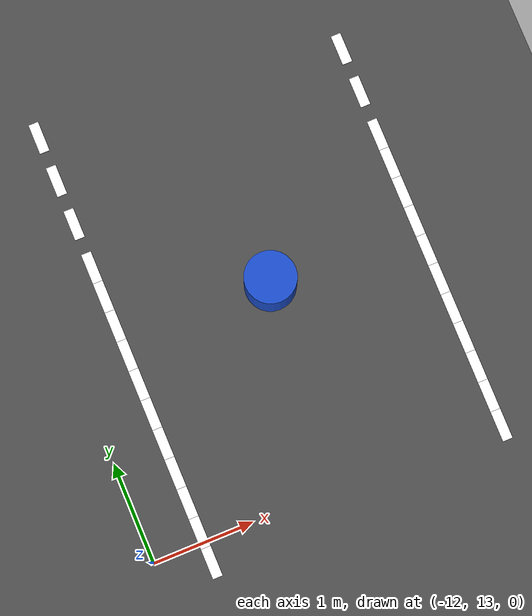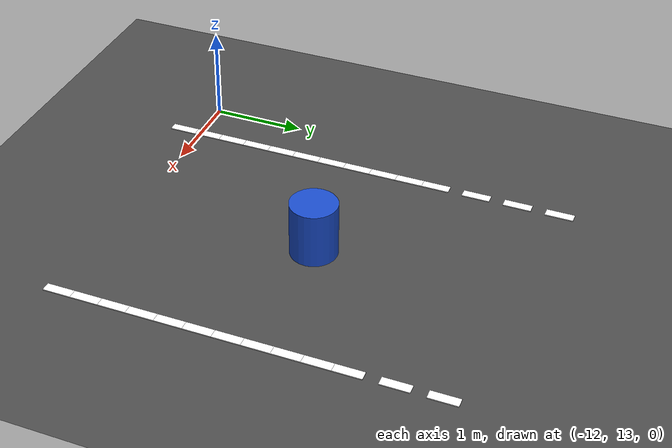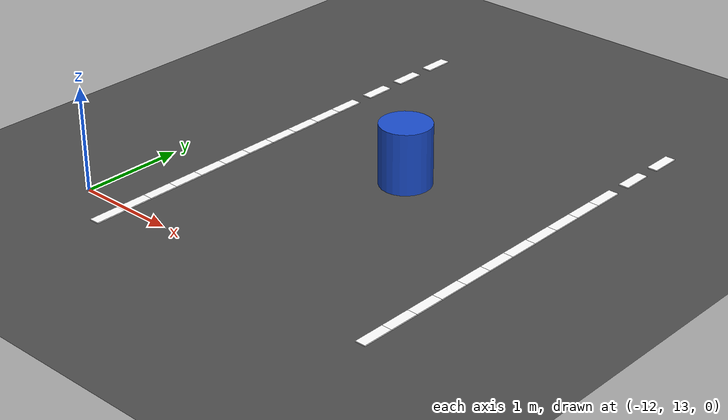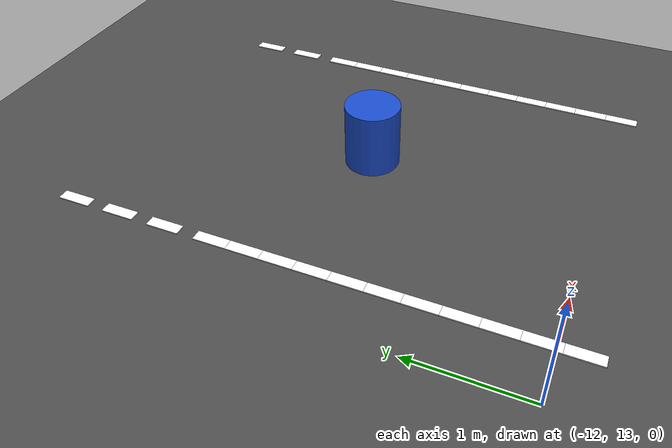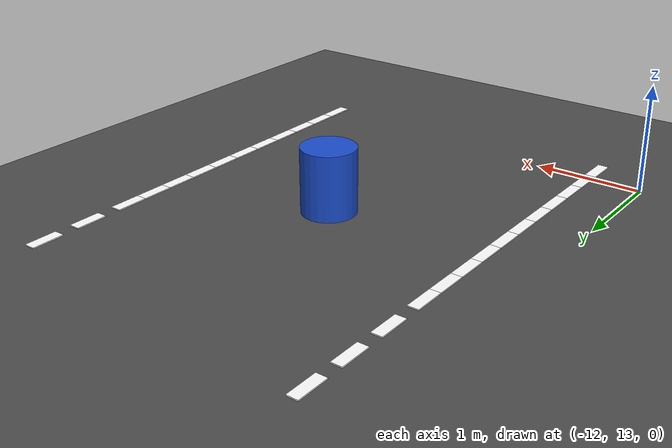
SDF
<sdf version="1.8">
 <world name="igvc_autonav">
  <model name="ground_plane">
   <static>true</static>
   <link name="link">
    <collision name="collision">
     <geometry><plane><normal>0 0 1</normal><size>60 60</size></plane></geometry>
     <surface><friction><ode><mu>0.8</mu><mu2>0.8</mu2></ode></friction></surface>
    </collision>
    <visual name="visual">
     <geometry><plane><normal>0 0 1</normal><size>60 60</size></plane></geometry>
     <material>
      <ambient>0.25 0.25 0.25 1</ambient>
      <diffuse>0.3 0.3 0.3 1</diffuse>
      <specular>0.1 0.1 0.1 1</specular>
     </material>
    </visual>
   </link>
  </model>
  <model name="lane_inner_138">
   <static>true</static>
   <pose>-8.5000 16.8500 0.01 0 0 -1.5708</pose>
   <link name="link">
    <visual name="visual">
     <geometry><box><size>0.3 0.1 0.01</size></box></geometry>
     <material><ambient>1 1 1 1</ambient><diffuse>1 1 1 1</diffuse><emissive>1 1 1 1</emissive></material>
    </visual>
   </link>
  </model>
  <model name="lane_inner_139">
   <static>true</static>
   <pose>-8.5000 16.4000 0.01 0 0 -1.5708</pose>
   <link name="link">
    <visual name="visual">
     <geometry><box><size>0.3 0.1 0.01</size></box></geometry>
     <material><ambient>1 1 1 1</ambient><diffuse>1 1 1 1</diffuse><emissive>1 1 1 1</emissive></material>
    </visual>
   </link>
  </model>
  <model name="lane_inner_140">
   <static>true</static>
   <pose>-8.5000 15.9500 0.01 0 0 -1.5708</pose>
   <link name="link">
    <visual name="visual">
     <geometry><box><size>0.3 0.1 0.01</size></box></geometry>
     <material><ambient>1 1 1 1</ambient><diffuse>1 1 1 1</diffuse><emissive>1 1 1 1</emissive></material>
    </visual>
   </link>
  </model>
  <model name="lane_inner_141">
   <static>true</static>
   <pose>-8.5000 15.6500 0.01 0 0 -1.5708</pose>
   <link name="link">
    <visual name="visual">
     <geometry><box><size>0.3 0.1 0.01</size></box></geometry>
     <material><ambient>1 1 1 1</ambient><diffuse>1 1 1 1</diffuse><emissive>1 1 1 1</emissive></material>
    </visual>
   </link>
  </model>
  <model name="lane_inner_142">
   <static>true</static>
   <pose>-8.5000 15.3500 0.01 0 0 -1.5708</pose>
   <link name="link">
    <visual name="visual">
     <geometry><box><size>0.3 0.1 0.01</size></box></geometry>
     <material><ambient>1 1 1 1</ambient><diffuse>1 1 1 1</diffuse><emissive>1 1 1 1</emissive></material>
    </visual>
   </link>
  </model>
  <model name="lane_inner_143">
   <static>true</static>
   <pose>-8.5000 15.0500 0.01 0 0 -1.5708</pose>
   <link name="link">
    <visual name="visual">
     <geometry><box><size>0.3 0.1 0.01</size></box></geometry>
     <material><ambient>1 1 1 1</ambient><diffuse>1 1 1 1</diffuse><emissive>1 1 1 1</emissive></material>
    </visual>
   </link>
  </model>
  <model name="lane_inner_144">
   <static>true</static>
   <pose>-8.5000 14.7500 0.01 0 0 -1.5708</pose>
   <link name="link">
    <visual name="visual">
     <geometry><box><size>0.3 0.1 0.01</size></box></geometry>
     <material><ambient>1 1 1 1</ambient><diffuse>1 1 1 1</diffuse><emissive>1 1 1 1</emissive></material>
    </visual>
   </link>
  </model>
  <model name="lane_inner_145">
   <static>true</static>
   <pose>-8.5000 14.4500 0.01 0 0 -1.5708</pose>
   <link name="link">
    <visual name="visual">
     <geometry><box><size>0.3 0.1 0.01</size></box></geometry>
     <material><ambient>1 1 1 1</ambient><diffuse>1 1 1 1</diffuse><emissive>1 1 1 1</emissive></material>
    </visual>
   </link>
  </model>
  <model name="lane_inner_146">
   <static>true</static>
   <pose>-8.5000 14.1500 0.01 0 0 -1.5708</pose>
   <link name="link">
    <visual name="visual">
     <geometry><box><size>0.3 0.1 0.01</size></box></geometry>
     <material><ambient>1 1 1 1</ambient><diffuse>1 1 1 1</diffuse><emissive>1 1 1 1</emissive></material>
    </visual>
   </link>
  </model>
  <model name="lane_inner_147">
   <static>true</static>
   <pose>-8.5000 13.8500 0.01 0 0 -1.5708</pose>
   <link name="link">
    <visual name="visual">
     <geometry><box><size>0.3 0.1 0.01</size></box></geometry>
     <material><ambient>1 1 1 1</ambient><diffuse>1 1 1 1</diffuse><emissive>1 1 1 1</emissive></material>
    </visual>
   </link>
  </model>
  <model name="lane_inner_148">
   <static>true</static>
   <pose>-8.5000 13.5500 0.01 0 0 -1.5708</pose>
   <link name="link">
    <visual name="visual">
     <geometry><box><size>0.3 0.1 0.01</size></box></geometry>
     <material><ambient>1 1 1 1</ambient><diffuse>1 1 1 1</diffuse><emissive>1 1 1 1</emissive></material>
    </visual>
   </link>
  </model>
  <model name="lane_inner_149">
   <static>true</static>
   <pose>-8.5000 13.2500 0.01 0 0 -1.5708</pose>
   <link name="link">
    <visual name="visual">
     <geometry><box><size>0.3 0.1 0.01</size></box></geometry>
     <material><ambient>1 1 1 1</ambient><diffuse>1 1 1 1</diffuse><emissive>1 1 1 1</emissive></material>
    </visual>
   </link>
  </model>
  <model name="lane_inner_150">
   <static>true</static>
   <pose>-8.5000 12.9500 0.01 0 0 -1.5708</pose>
   <link name="link">
    <visual name="visual">
     <geometry><box><size>0.3 0.1 0.01</size></box></geometry>
     <material><ambient>1 1 1 1</ambient><diffuse>1 1 1 1</diffuse><emissive>1 1 1 1</emissive></material>
    </visual>
   </link>
  </model>
  <model name="lane_outer_170">
   <static>true</static>
   <pose>-11.5000 17.1500 0.01 0 0 -1.5708</pose>
   <link name="link">
    <visual name="visual">
     <geometry><box><size>0.3 0.1 0.01</size></box></geometry>
     <material><ambient>1 1 1 1</ambient><diffuse>1 1 1 1</diffuse><emissive>1 1 1 1</emissive></material>
    </visual>
   </link>
  </model>
  <model name="lane_outer_171">
   <static>true</static>
   <pose>-11.5000 16.7000 0.01 0 0 -1.5708</pose>
   <link name="link">
    <visual name="visual">
     <geometry><box><size>0.3 0.1 0.01</size></box></geometry>
     <material><ambient>1 1 1 1</ambient><diffuse>1 1 1 1</diffuse><emissive>1 1 1 1</emissive></material>
    </visual>
   </link>
  </model>
  <model name="lane_outer_172">
   <static>true</static>
   <pose>-11.5000 16.2500 0.01 0 0 -1.5708</pose>
   <link name="link">
    <visual name="visual">
     <geometry><box><size>0.3 0.1 0.01</size></box></geometry>
     <material><ambient>1 1 1 1</ambient><diffuse>1 1 1 1</diffuse><emissive>1 1 1 1</emissive></material>
    </visual>
   </link>
  </model>
  <model name="lane_outer_173">
   <static>true</static>
   <pose>-11.5000 15.8000 0.01 0 0 -1.5708</pose>
   <link name="link">
    <visual name="visual">
     <geometry><box><size>0.3 0.1 0.01</size></box></geometry>
     <material><ambient>1 1 1 1</ambient><diffuse>1 1 1 1</diffuse><emissive>1 1 1 1</emissive></material>
    </visual>
   </link>
  </model>
  <model name="lane_outer_174">
   <static>true</static>
   <pose>-11.5000 15.5000 0.01 0 0 -1.5708</pose>
   <link name="link">
    <visual name="visual">
     <geometry><box><size>0.3 0.1 0.01</size></box></geometry>
     <material><ambient>1 1 1 1</ambient><diffuse>1 1 1 1</diffuse><emissive>1 1 1 1</emissive></material>
    </visual>
   </link>
  </model>
  <model name="lane_outer_175">
   <static>true</static>
   <pose>-11.5000 15.2000 0.01 0 0 -1.5708</pose>
   <link name="link">
    <visual name="visual">
     <geometry><box><size>0.3 0.1 0.01</size></box></geometry>
     <material><ambient>1 1 1 1</ambient><diffuse>1 1 1 1</diffuse><emissive>1 1 1 1</emissive></material>
    </visual>
   </link>
  </model>
  <model name="lane_outer_176">
   <static>true</static>
   <pose>-11.5000 14.9000 0.01 0 0 -1.5708</pose>
   <link name="link">
    <visual name="visual">
     <geometry><box><size>0.3 0.1 0.01</size></box></geometry>
     <material><ambient>1 1 1 1</ambient><diffuse>1 1 1 1</diffuse><emissive>1 1 1 1</emissive></material>
    </visual>
   </link>
  </model>
  <model name="lane_outer_177">
   <static>true</static>
   <pose>-11.5000 14.6000 0.01 0 0 -1.5708</pose>
   <link name="link">
    <visual name="visual">
     <geometry><box><size>0.3 0.1 0.01</size></box></geometry>
     <material><ambient>1 1 1 1</ambient><diffuse>1 1 1 1</diffuse><emissive>1 1 1 1</emissive></material>
    </visual>
   </link>
  </model>
  <model name="lane_outer_178">
   <static>true</static>
   <pose>-11.5000 14.3000 0.01 0 0 -1.5708</pose>
   <link name="link">
    <visual name="visual">
     <geometry><box><size>0.3 0.1 0.01</size></box></geometry>
     <material><ambient>1 1 1 1</ambient><diffuse>1 1 1 1</diffuse><emissive>1 1 1 1</emissive></material>
    </visual>
   </link>
  </model>
  <model name="lane_outer_179">
   <static>true</static>
   <pose>-11.5000 14.0000 0.01 0 0 -1.5708</pose>
   <link name="link">
    <visual name="visual">
     <geometry><box><size>0.3 0.1 0.01</size></box></geometry>
     <material><ambient>1 1 1 1</ambient><diffuse>1 1 1 1</diffuse><emissive>1 1 1 1</emissive></material>
    </visual>
   </link>
  </model>
  <model name="lane_outer_180">
   <static>true</static>
   <pose>-11.5000 13.7000 0.01 0 0 -1.5708</pose>
   <link name="link">
    <visual name="visual">
     <geometry><box><size>0.3 0.1 0.01</size></box></geometry>
     <material><ambient>1 1 1 1</ambient><diffuse>1 1 1 1</diffuse><emissive>1 1 1 1</emissive></material>
    </visual>
   </link>
  </model>
  <model name="lane_outer_181">
   <static>true</static>
   <pose>-11.5000 13.4000 0.01 0 0 -1.5708</pose>
   <link name="link">
    <visual name="visual">
     <geometry><box><size>0.3 0.1 0.01</size></box></geometry>
     <material><ambient>1 1 1 1</ambient><diffuse>1 1 1 1</diffuse><emissive>1 1 1 1</emissive></material>
    </visual>
   </link>
  </model>
  <model name="lane_outer_182">
   <static>true</static>
   <pose>-11.5000 13.1000 0.01 0 0 -1.5708</pose>
   <link name="link">
    <visual name="visual">
     <geometry><box><size>0.3 0.1 0.01</size></box></geometry>
     <material><ambient>1 1 1 1</ambient><diffuse>1 1 1 1</diffuse><emissive>1 1 1 1</emissive></material>
    </visual>
   </link>
  </model>
  <model name="lane_outer_183">
   <static>true</static>
   <pose>-11.5000 12.8000 0.01 0 0 -1.5708</pose>
   <link name="link">
    <visual name="visual">
     <geometry><box><size>0.3 0.1 0.01</size></box></geometry>
     <material><ambient>1 1 1 1</ambient><diffuse>1 1 1 1</diffuse><emissive>1 1 1 1</emissive></material>
    </visual>
   </link>
  </model>
  <include><uri>model://barrel</uri><name>barrel_1</name><pose>-10 15 0 0 0 0</pose></include>
 </world>
</sdf>
